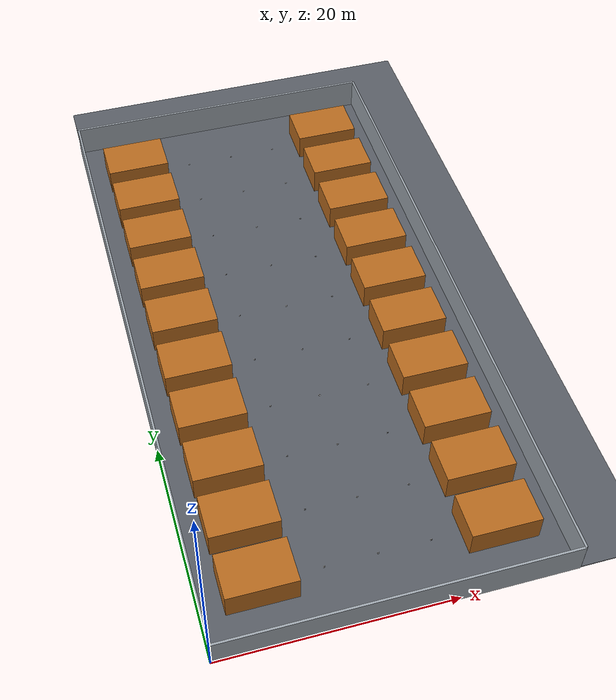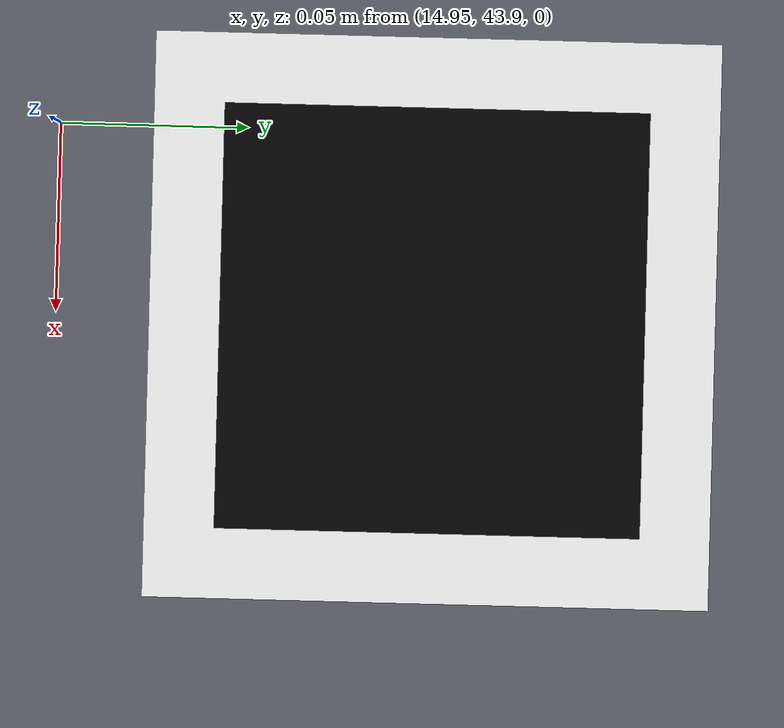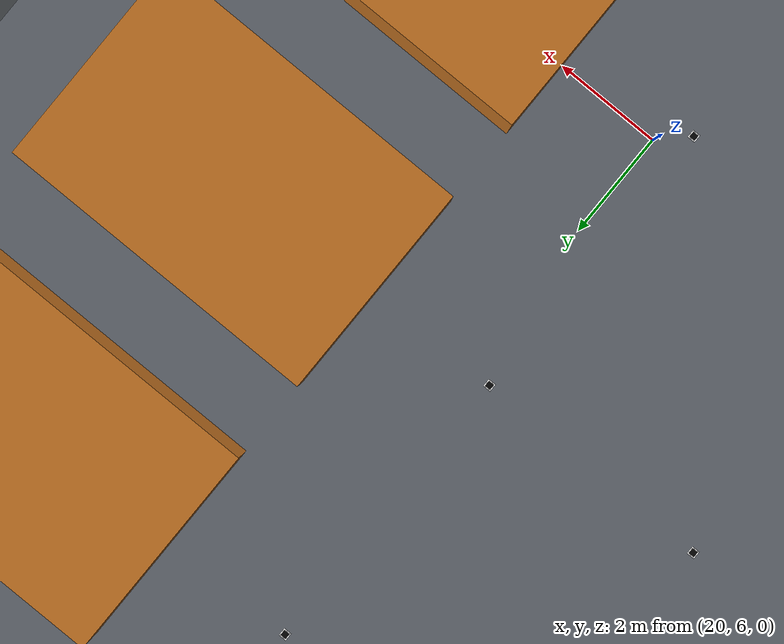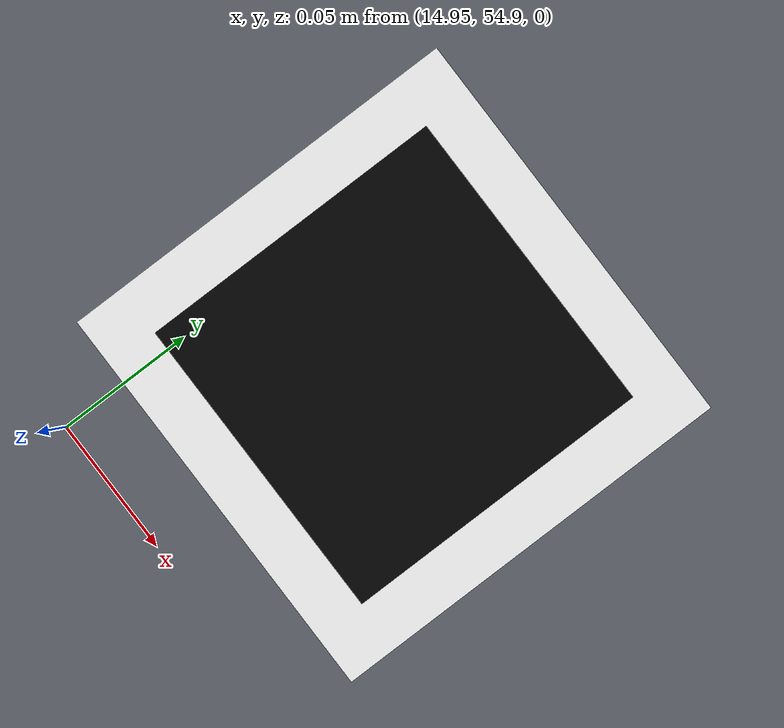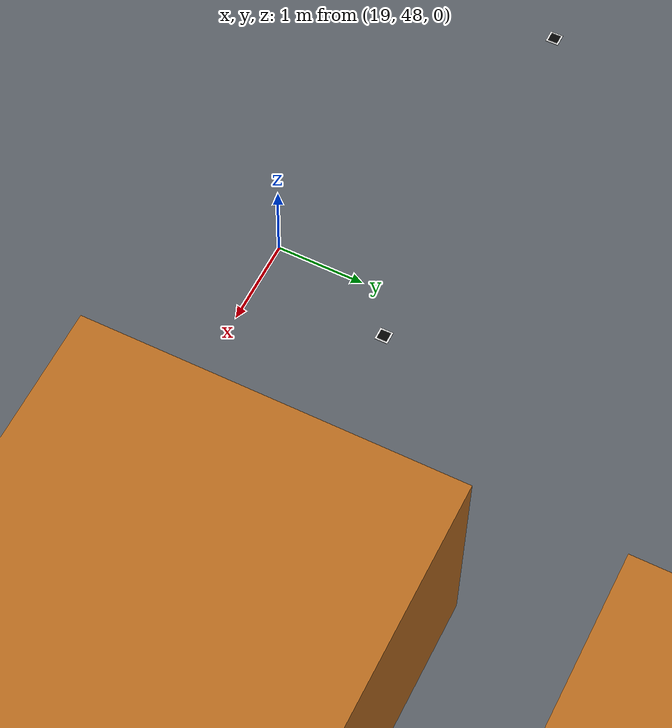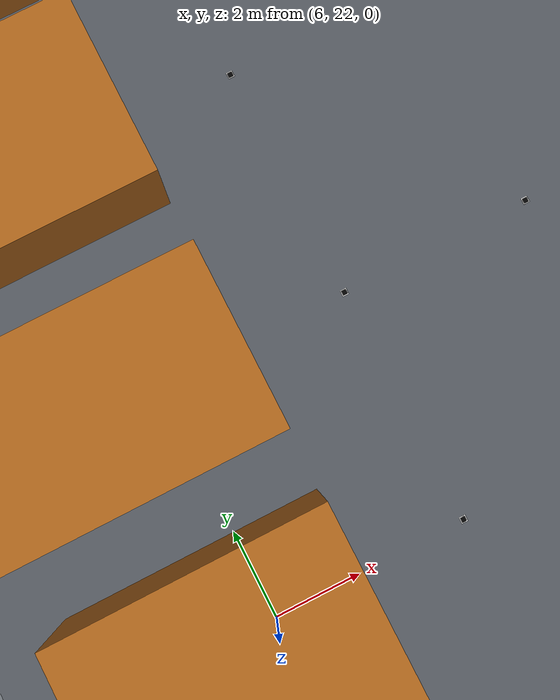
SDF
<?xml version="1.0"?>
<sdf version="1.6">
  <world name="warehouse_generated">
    <plugin name="gazebo_ros_state" filename="libgazebo_ros_state.so"/>
    <gravity>0 0 -9.81</gravity>
    <include><uri>model://sun</uri></include>
    <model name="floor_1">
      <static>true</static><pose>0 0 0 0 0 0</pose>
      <link name="link">
        <visual name="visual"><geometry><mesh><uri>file:///home/yahboom/swerve_bringup/generated/maps/WH-TEST-01/23/gazebo/models/floor_1/mesh.obj</uri><scale>1 1 1</scale></mesh></geometry><material><ambient>0.35 0.37 0.40 1</ambient><diffuse>0.35 0.37 0.40 1</diffuse></material></visual>
        <collision name="collision"><geometry><mesh><uri>file:///home/yahboom/swerve_bringup/generated/maps/WH-TEST-01/23/gazebo/models/floor_1/mesh.obj</uri><scale>1 1 1</scale></mesh></geometry></collision>
      </link>
    </model>
    <model name="floor_1_boundary_wall_0">
      <static>true</static>
      <pose>15 0 1.5 0 0 0</pose>
      <link name="link">
        <visual name="visual"><geometry><box><size>30 0.2 3</size></box></geometry><material><ambient>0.62 0.65 0.68 1</ambient><diffuse>0.62 0.65 0.68 1</diffuse></material></visual>
        <collision name="collision"><geometry><box><size>30 0.2 3</size></box></geometry></collision>
      </link>
    </model>
    <model name="floor_1_boundary_wall_1">
      <static>true</static>
      <pose>30 30 1.5 0 0 1.57079633</pose>
      <link name="link">
        <visual name="visual"><geometry><box><size>60 0.2 3</size></box></geometry><material><ambient>0.62 0.65 0.68 1</ambient><diffuse>0.62 0.65 0.68 1</diffuse></material></visual>
        <collision name="collision"><geometry><box><size>60 0.2 3</size></box></geometry></collision>
      </link>
    </model>
    <model name="floor_1_boundary_wall_2">
      <static>true</static>
      <pose>15 60 1.5 0 0 3.14159265</pose>
      <link name="link">
        <visual name="visual"><geometry><box><size>30 0.2 3</size></box></geometry><material><ambient>0.62 0.65 0.68 1</ambient><diffuse>0.62 0.65 0.68 1</diffuse></material></visual>
        <collision name="collision"><geometry><box><size>30 0.2 3</size></box></geometry></collision>
      </link>
    </model>
    <model name="floor_1_boundary_wall_3">
      <static>true</static>
      <pose>0 30 1.5 0 0 -1.57079633</pose>
      <link name="link">
        <visual name="visual"><geometry><box><size>60 0.2 3</size></box></geometry><material><ambient>0.62 0.65 0.68 1</ambient><diffuse>0.62 0.65 0.68 1</diffuse></material></visual>
        <collision name="collision"><geometry><box><size>60 0.2 3</size></box></geometry></collision>
      </link>
    </model>
    <model name="rack_SHELF-L01">
      <static>true</static>
      <pose>5 5.5 1.25 0 0 0</pose>
      <link name="link">
        <visual name="visual"><geometry><box><size>6 4 2.5</size></box></geometry><material><ambient>0.72 0.42 0.12 1</ambient><diffuse>0.72 0.42 0.12 1</diffuse></material></visual>
        <collision name="collision"><geometry><box><size>6 4 2.5</size></box></geometry></collision>
      </link>
    </model>
    <model name="rack_SHELF-R01">
      <static>true</static>
      <pose>25 5.5 1.25 0 0 0</pose>
      <link name="link">
        <visual name="visual"><geometry><box><size>6 4 2.5</size></box></geometry><material><ambient>0.72 0.42 0.12 1</ambient><diffuse>0.72 0.42 0.12 1</diffuse></material></visual>
        <collision name="collision"><geometry><box><size>6 4 2.5</size></box></geometry></collision>
      </link>
    </model>
    <model name="rack_SHELF-L02">
      <static>true</static>
      <pose>5 11 1.25 0 0 0</pose>
      <link name="link">
        <visual name="visual"><geometry><box><size>6 4 2.5</size></box></geometry><material><ambient>0.72 0.42 0.12 1</ambient><diffuse>0.72 0.42 0.12 1</diffuse></material></visual>
        <collision name="collision"><geometry><box><size>6 4 2.5</size></box></geometry></collision>
      </link>
    </model>
    <model name="rack_SHELF-R02">
      <static>true</static>
      <pose>25 11 1.25 0 0 0</pose>
      <link name="link">
        <visual name="visual"><geometry><box><size>6 4 2.5</size></box></geometry><material><ambient>0.72 0.42 0.12 1</ambient><diffuse>0.72 0.42 0.12 1</diffuse></material></visual>
        <collision name="collision"><geometry><box><size>6 4 2.5</size></box></geometry></collision>
      </link>
    </model>
    <model name="rack_SHELF-L03">
      <static>true</static>
      <pose>5 16.5 1.25 0 0 0</pose>
      <link name="link">
        <visual name="visual"><geometry><box><size>6 4 2.5</size></box></geometry><material><ambient>0.72 0.42 0.12 1</ambient><diffuse>0.72 0.42 0.12 1</diffuse></material></visual>
        <collision name="collision"><geometry><box><size>6 4 2.5</size></box></geometry></collision>
      </link>
    </model>
    <model name="rack_SHELF-R03">
      <static>true</static>
      <pose>25 16.5 1.25 0 0 0</pose>
      <link name="link">
        <visual name="visual"><geometry><box><size>6 4 2.5</size></box></geometry><material><ambient>0.72 0.42 0.12 1</ambient><diffuse>0.72 0.42 0.12 1</diffuse></material></visual>
        <collision name="collision"><geometry><box><size>6 4 2.5</size></box></geometry></collision>
      </link>
    </model>
    <model name="rack_SHELF-L04">
      <static>true</static>
      <pose>5 22 1.25 0 0 0</pose>
      <link name="link">
        <visual name="visual"><geometry><box><size>6 4 2.5</size></box></geometry><material><ambient>0.72 0.42 0.12 1</ambient><diffuse>0.72 0.42 0.12 1</diffuse></material></visual>
        <collision name="collision"><geometry><box><size>6 4 2.5</size></box></geometry></collision>
      </link>
    </model>
    <model name="rack_SHELF-R04">
      <static>true</static>
      <pose>25 22 1.25 0 0 0</pose>
      <link name="link">
        <visual name="visual"><geometry><box><size>6 4 2.5</size></box></geometry><material><ambient>0.72 0.42 0.12 1</ambient><diffuse>0.72 0.42 0.12 1</diffuse></material></visual>
        <collision name="collision"><geometry><box><size>6 4 2.5</size></box></geometry></collision>
      </link>
    </model>
    <model name="rack_SHELF-L05">
      <static>true</static>
      <pose>5 27.5 1.25 0 0 0</pose>
      <link name="link">
        <visual name="visual"><geometry><box><size>6 4 2.5</size></box></geometry><material><ambient>0.72 0.42 0.12 1</ambient><diffuse>0.72 0.42 0.12 1</diffuse></material></visual>
        <collision name="collision"><geometry><box><size>6 4 2.5</size></box></geometry></collision>
      </link>
    </model>
    <model name="rack_SHELF-R05">
      <static>true</static>
      <pose>25 27.5 1.25 0 0 0</pose>
      <link name="link">
        <visual name="visual"><geometry><box><size>6 4 2.5</size></box></geometry><material><ambient>0.72 0.42 0.12 1</ambient><diffuse>0.72 0.42 0.12 1</diffuse></material></visual>
        <collision name="collision"><geometry><box><size>6 4 2.5</size></box></geometry></collision>
      </link>
    </model>
    <model name="rack_SHELF-L06">
      <static>true</static>
      <pose>5 33 1.25 0 0 0</pose>
      <link name="link">
        <visual name="visual"><geometry><box><size>6 4 2.5</size></box></geometry><material><ambient>0.72 0.42 0.12 1</ambient><diffuse>0.72 0.42 0.12 1</diffuse></material></visual>
        <collision name="collision"><geometry><box><size>6 4 2.5</size></box></geometry></collision>
      </link>
    </model>
    <model name="rack_SHELF-R06">
      <static>true</static>
      <pose>25 33 1.25 0 0 0</pose>
      <link name="link">
        <visual name="visual"><geometry><box><size>6 4 2.5</size></box></geometry><material><ambient>0.72 0.42 0.12 1</ambient><diffuse>0.72 0.42 0.12 1</diffuse></material></visual>
        <collision name="collision"><geometry><box><size>6 4 2.5</size></box></geometry></collision>
      </link>
    </model>
    <model name="rack_SHELF-L07">
      <static>true</static>
      <pose>5 38.5 1.25 0 0 0</pose>
      <link name="link">
        <visual name="visual"><geometry><box><size>6 4 2.5</size></box></geometry><material><ambient>0.72 0.42 0.12 1</ambient><diffuse>0.72 0.42 0.12 1</diffuse></material></visual>
        <collision name="collision"><geometry><box><size>6 4 2.5</size></box></geometry></collision>
      </link>
    </model>
    <model name="rack_SHELF-R07">
      <static>true</static>
      <pose>25 38.5 1.25 0 0 0</pose>
      <link name="link">
        <visual name="visual"><geometry><box><size>6 4 2.5</size></box></geometry><material><ambient>0.72 0.42 0.12 1</ambient><diffuse>0.72 0.42 0.12 1</diffuse></material></visual>
        <collision name="collision"><geometry><box><size>6 4 2.5</size></box></geometry></collision>
      </link>
    </model>
    <model name="rack_SHELF-L08">
      <static>true</static>
      <pose>5 44 1.25 0 0 0</pose>
      <link name="link">
        <visual name="visual"><geometry><box><size>6 4 2.5</size></box></geometry><material><ambient>0.72 0.42 0.12 1</ambient><diffuse>0.72 0.42 0.12 1</diffuse></material></visual>
        <collision name="collision"><geometry><box><size>6 4 2.5</size></box></geometry></collision>
      </link>
    </model>
    <model name="rack_SHELF-R08">
      <static>true</static>
      <pose>25 44 1.25 0 0 0</pose>
      <link name="link">
        <visual name="visual"><geometry><box><size>6 4 2.5</size></box></geometry><material><ambient>0.72 0.42 0.12 1</ambient><diffuse>0.72 0.42 0.12 1</diffuse></material></visual>
        <collision name="collision"><geometry><box><size>6 4 2.5</size></box></geometry></collision>
      </link>
    </model>
    <model name="rack_SHELF-L09">
      <static>true</static>
      <pose>5 49.5 1.25 0 0 0</pose>
      <link name="link">
        <visual name="visual"><geometry><box><size>6 4 2.5</size></box></geometry><material><ambient>0.72 0.42 0.12 1</ambient><diffuse>0.72 0.42 0.12 1</diffuse></material></visual>
        <collision name="collision"><geometry><box><size>6 4 2.5</size></box></geometry></collision>
      </link>
    </model>
    <model name="rack_SHELF-R09">
      <static>true</static>
      <pose>25 49.5 1.25 0 0 0</pose>
      <link name="link">
        <visual name="visual"><geometry><box><size>6 4 2.5</size></box></geometry><material><ambient>0.72 0.42 0.12 1</ambient><diffuse>0.72 0.42 0.12 1</diffuse></material></visual>
        <collision name="collision"><geometry><box><size>6 4 2.5</size></box></geometry></collision>
      </link>
    </model>
    <model name="rack_SHELF-L10">
      <static>true</static>
      <pose>5 55 1.25 0 0 0</pose>
      <link name="link">
        <visual name="visual"><geometry><box><size>6 4 2.5</size></box></geometry><material><ambient>0.72 0.42 0.12 1</ambient><diffuse>0.72 0.42 0.12 1</diffuse></material></visual>
        <collision name="collision"><geometry><box><size>6 4 2.5</size></box></geometry></collision>
      </link>
    </model>
    <model name="rack_SHELF-R10">
      <static>true</static>
      <pose>25 55 1.25 0 0 0</pose>
      <link name="link">
        <visual name="visual"><geometry><box><size>6 4 2.5</size></box></geometry><material><ambient>0.72 0.42 0.12 1</ambient><diffuse>0.72 0.42 0.12 1</diffuse></material></visual>
        <collision name="collision"><geometry><box><size>6 4 2.5</size></box></geometry></collision>
      </link>
    </model>
    <model name="nav_tag_1101">
      <static>true</static><pose>10.5 5.5 0 0 0 -1.57079633</pose>
      <link name="link">
        <visual name="substrate"><pose>0 0 0.003 0 0 0</pose><geometry><box><size>0.15 0.15 0.006</size></box></geometry><material><ambient>0.95 0.95 0.95 1</ambient><diffuse>0.95 0.95 0.95 1</diffuse></material></visual>
        <visual name="id_marker"><pose>0 0 0.007 0 0 0</pose><geometry><box><size>0.1125 0.1125 0.004</size></box></geometry><material><ambient>0.01 0.01 0.01 1</ambient><diffuse>0.01 0.01 0.01 1</diffuse></material></visual>
      </link>
    </model>
    <model name="nav_tag_1201">
      <static>true</static><pose>15 5.5 0 0 0 1.57079633</pose>
      <link name="link">
        <visual name="substrate"><pose>0 0 0.003 0 0 0</pose><geometry><box><size>0.15 0.15 0.006</size></box></geometry><material><ambient>0.95 0.95 0.95 1</ambient><diffuse>0.95 0.95 0.95 1</diffuse></material></visual>
        <visual name="id_marker"><pose>0 0 0.007 0 0 0</pose><geometry><box><size>0.1125 0.1125 0.004</size></box></geometry><material><ambient>0.01 0.01 0.01 1</ambient><diffuse>0.01 0.01 0.01 1</diffuse></material></visual>
      </link>
    </model>
    <model name="nav_tag_1301">
      <static>true</static><pose>19.5 5.5 0 0 0 -1.57079633</pose>
      <link name="link">
        <visual name="substrate"><pose>0 0 0.003 0 0 0</pose><geometry><box><size>0.15 0.15 0.006</size></box></geometry><material><ambient>0.95 0.95 0.95 1</ambient><diffuse>0.95 0.95 0.95 1</diffuse></material></visual>
        <visual name="id_marker"><pose>0 0 0.007 0 0 0</pose><geometry><box><size>0.1125 0.1125 0.004</size></box></geometry><material><ambient>0.01 0.01 0.01 1</ambient><diffuse>0.01 0.01 0.01 1</diffuse></material></visual>
      </link>
    </model>
    <model name="nav_tag_1102">
      <static>true</static><pose>10.5 11 0 0 0 -1.57079633</pose>
      <link name="link">
        <visual name="substrate"><pose>0 0 0.003 0 0 0</pose><geometry><box><size>0.15 0.15 0.006</size></box></geometry><material><ambient>0.95 0.95 0.95 1</ambient><diffuse>0.95 0.95 0.95 1</diffuse></material></visual>
        <visual name="id_marker"><pose>0 0 0.007 0 0 0</pose><geometry><box><size>0.1125 0.1125 0.004</size></box></geometry><material><ambient>0.01 0.01 0.01 1</ambient><diffuse>0.01 0.01 0.01 1</diffuse></material></visual>
      </link>
    </model>
    <model name="nav_tag_1202">
      <static>true</static><pose>15 11 0 0 0 1.57079633</pose>
      <link name="link">
        <visual name="substrate"><pose>0 0 0.003 0 0 0</pose><geometry><box><size>0.15 0.15 0.006</size></box></geometry><material><ambient>0.95 0.95 0.95 1</ambient><diffuse>0.95 0.95 0.95 1</diffuse></material></visual>
        <visual name="id_marker"><pose>0 0 0.007 0 0 0</pose><geometry><box><size>0.1125 0.1125 0.004</size></box></geometry><material><ambient>0.01 0.01 0.01 1</ambient><diffuse>0.01 0.01 0.01 1</diffuse></material></visual>
      </link>
    </model>
    <model name="nav_tag_1302">
      <static>true</static><pose>19.5 11 0 0 0 -1.57079633</pose>
      <link name="link">
        <visual name="substrate"><pose>0 0 0.003 0 0 0</pose><geometry><box><size>0.15 0.15 0.006</size></box></geometry><material><ambient>0.95 0.95 0.95 1</ambient><diffuse>0.95 0.95 0.95 1</diffuse></material></visual>
        <visual name="id_marker"><pose>0 0 0.007 0 0 0</pose><geometry><box><size>0.1125 0.1125 0.004</size></box></geometry><material><ambient>0.01 0.01 0.01 1</ambient><diffuse>0.01 0.01 0.01 1</diffuse></material></visual>
      </link>
    </model>
    <model name="nav_tag_1103">
      <static>true</static><pose>10.5 16.5 0 0 0 -1.57079633</pose>
      <link name="link">
        <visual name="substrate"><pose>0 0 0.003 0 0 0</pose><geometry><box><size>0.15 0.15 0.006</size></box></geometry><material><ambient>0.95 0.95 0.95 1</ambient><diffuse>0.95 0.95 0.95 1</diffuse></material></visual>
        <visual name="id_marker"><pose>0 0 0.007 0 0 0</pose><geometry><box><size>0.1125 0.1125 0.004</size></box></geometry><material><ambient>0.01 0.01 0.01 1</ambient><diffuse>0.01 0.01 0.01 1</diffuse></material></visual>
      </link>
    </model>
    <model name="nav_tag_1203">
      <static>true</static><pose>15 16.5 0 0 0 1.57079633</pose>
      <link name="link">
        <visual name="substrate"><pose>0 0 0.003 0 0 0</pose><geometry><box><size>0.15 0.15 0.006</size></box></geometry><material><ambient>0.95 0.95 0.95 1</ambient><diffuse>0.95 0.95 0.95 1</diffuse></material></visual>
        <visual name="id_marker"><pose>0 0 0.007 0 0 0</pose><geometry><box><size>0.1125 0.1125 0.004</size></box></geometry><material><ambient>0.01 0.01 0.01 1</ambient><diffuse>0.01 0.01 0.01 1</diffuse></material></visual>
      </link>
    </model>
    <model name="nav_tag_1303">
      <static>true</static><pose>19.5 16.5 0 0 0 -1.57079633</pose>
      <link name="link">
        <visual name="substrate"><pose>0 0 0.003 0 0 0</pose><geometry><box><size>0.15 0.15 0.006</size></box></geometry><material><ambient>0.95 0.95 0.95 1</ambient><diffuse>0.95 0.95 0.95 1</diffuse></material></visual>
        <visual name="id_marker"><pose>0 0 0.007 0 0 0</pose><geometry><box><size>0.1125 0.1125 0.004</size></box></geometry><material><ambient>0.01 0.01 0.01 1</ambient><diffuse>0.01 0.01 0.01 1</diffuse></material></visual>
      </link>
    </model>
    <model name="nav_tag_1104">
      <static>true</static><pose>10.5 22 0 0 0 -1.57079633</pose>
      <link name="link">
        <visual name="substrate"><pose>0 0 0.003 0 0 0</pose><geometry><box><size>0.15 0.15 0.006</size></box></geometry><material><ambient>0.95 0.95 0.95 1</ambient><diffuse>0.95 0.95 0.95 1</diffuse></material></visual>
        <visual name="id_marker"><pose>0 0 0.007 0 0 0</pose><geometry><box><size>0.1125 0.1125 0.004</size></box></geometry><material><ambient>0.01 0.01 0.01 1</ambient><diffuse>0.01 0.01 0.01 1</diffuse></material></visual>
      </link>
    </model>
    <model name="nav_tag_1204">
      <static>true</static><pose>15 22 0 0 0 1.57079633</pose>
      <link name="link">
        <visual name="substrate"><pose>0 0 0.003 0 0 0</pose><geometry><box><size>0.15 0.15 0.006</size></box></geometry><material><ambient>0.95 0.95 0.95 1</ambient><diffuse>0.95 0.95 0.95 1</diffuse></material></visual>
        <visual name="id_marker"><pose>0 0 0.007 0 0 0</pose><geometry><box><size>0.1125 0.1125 0.004</size></box></geometry><material><ambient>0.01 0.01 0.01 1</ambient><diffuse>0.01 0.01 0.01 1</diffuse></material></visual>
      </link>
    </model>
    <model name="nav_tag_1304">
      <static>true</static><pose>19.5 22 0 0 0 -1.57079633</pose>
      <link name="link">
        <visual name="substrate"><pose>0 0 0.003 0 0 0</pose><geometry><box><size>0.15 0.15 0.006</size></box></geometry><material><ambient>0.95 0.95 0.95 1</ambient><diffuse>0.95 0.95 0.95 1</diffuse></material></visual>
        <visual name="id_marker"><pose>0 0 0.007 0 0 0</pose><geometry><box><size>0.1125 0.1125 0.004</size></box></geometry><material><ambient>0.01 0.01 0.01 1</ambient><diffuse>0.01 0.01 0.01 1</diffuse></material></visual>
      </link>
    </model>
    <model name="nav_tag_1105">
      <static>true</static><pose>10.5 27.5 0 0 0 -1.57079633</pose>
      <link name="link">
        <visual name="substrate"><pose>0 0 0.003 0 0 0</pose><geometry><box><size>0.15 0.15 0.006</size></box></geometry><material><ambient>0.95 0.95 0.95 1</ambient><diffuse>0.95 0.95 0.95 1</diffuse></material></visual>
        <visual name="id_marker"><pose>0 0 0.007 0 0 0</pose><geometry><box><size>0.1125 0.1125 0.004</size></box></geometry><material><ambient>0.01 0.01 0.01 1</ambient><diffuse>0.01 0.01 0.01 1</diffuse></material></visual>
      </link>
    </model>
    <model name="nav_tag_1205">
      <static>true</static><pose>15 27.5 0 0 0 1.57079633</pose>
      <link name="link">
        <visual name="substrate"><pose>0 0 0.003 0 0 0</pose><geometry><box><size>0.15 0.15 0.006</size></box></geometry><material><ambient>0.95 0.95 0.95 1</ambient><diffuse>0.95 0.95 0.95 1</diffuse></material></visual>
        <visual name="id_marker"><pose>0 0 0.007 0 0 0</pose><geometry><box><size>0.1125 0.1125 0.004</size></box></geometry><material><ambient>0.01 0.01 0.01 1</ambient><diffuse>0.01 0.01 0.01 1</diffuse></material></visual>
      </link>
    </model>
    <model name="nav_tag_1305">
      <static>true</static><pose>19.5 27.5 0 0 0 -1.57079633</pose>
      <link name="link">
        <visual name="substrate"><pose>0 0 0.003 0 0 0</pose><geometry><box><size>0.15 0.15 0.006</size></box></geometry><material><ambient>0.95 0.95 0.95 1</ambient><diffuse>0.95 0.95 0.95 1</diffuse></material></visual>
        <visual name="id_marker"><pose>0 0 0.007 0 0 0</pose><geometry><box><size>0.1125 0.1125 0.004</size></box></geometry><material><ambient>0.01 0.01 0.01 1</ambient><diffuse>0.01 0.01 0.01 1</diffuse></material></visual>
      </link>
    </model>
    <model name="nav_tag_1106">
      <static>true</static><pose>10.5 33 0 0 0 -1.57079633</pose>
      <link name="link">
        <visual name="substrate"><pose>0 0 0.003 0 0 0</pose><geometry><box><size>0.15 0.15 0.006</size></box></geometry><material><ambient>0.95 0.95 0.95 1</ambient><diffuse>0.95 0.95 0.95 1</diffuse></material></visual>
        <visual name="id_marker"><pose>0 0 0.007 0 0 0</pose><geometry><box><size>0.1125 0.1125 0.004</size></box></geometry><material><ambient>0.01 0.01 0.01 1</ambient><diffuse>0.01 0.01 0.01 1</diffuse></material></visual>
      </link>
    </model>
    <model name="nav_tag_1206">
      <static>true</static><pose>15 33 0 0 0 1.57079633</pose>
      <link name="link">
        <visual name="substrate"><pose>0 0 0.003 0 0 0</pose><geometry><box><size>0.15 0.15 0.006</size></box></geometry><material><ambient>0.95 0.95 0.95 1</ambient><diffuse>0.95 0.95 0.95 1</diffuse></material></visual>
        <visual name="id_marker"><pose>0 0 0.007 0 0 0</pose><geometry><box><size>0.1125 0.1125 0.004</size></box></geometry><material><ambient>0.01 0.01 0.01 1</ambient><diffuse>0.01 0.01 0.01 1</diffuse></material></visual>
      </link>
    </model>
    <model name="nav_tag_1306">
      <static>true</static><pose>19.5 33 0 0 0 -1.57079633</pose>
      <link name="link">
        <visual name="substrate"><pose>0 0 0.003 0 0 0</pose><geometry><box><size>0.15 0.15 0.006</size></box></geometry><material><ambient>0.95 0.95 0.95 1</ambient><diffuse>0.95 0.95 0.95 1</diffuse></material></visual>
        <visual name="id_marker"><pose>0 0 0.007 0 0 0</pose><geometry><box><size>0.1125 0.1125 0.004</size></box></geometry><material><ambient>0.01 0.01 0.01 1</ambient><diffuse>0.01 0.01 0.01 1</diffuse></material></visual>
      </link>
    </model>
    <model name="nav_tag_1107">
      <static>true</static><pose>10.5 38.5 0 0 0 -1.57079633</pose>
      <link name="link">
        <visual name="substrate"><pose>0 0 0.003 0 0 0</pose><geometry><box><size>0.15 0.15 0.006</size></box></geometry><material><ambient>0.95 0.95 0.95 1</ambient><diffuse>0.95 0.95 0.95 1</diffuse></material></visual>
        <visual name="id_marker"><pose>0 0 0.007 0 0 0</pose><geometry><box><size>0.1125 0.1125 0.004</size></box></geometry><material><ambient>0.01 0.01 0.01 1</ambient><diffuse>0.01 0.01 0.01 1</diffuse></material></visual>
      </link>
    </model>
    <model name="nav_tag_1207">
      <static>true</static><pose>15 38.5 0 0 0 1.57079633</pose>
      <link name="link">
        <visual name="substrate"><pose>0 0 0.003 0 0 0</pose><geometry><box><size>0.15 0.15 0.006</size></box></geometry><material><ambient>0.95 0.95 0.95 1</ambient><diffuse>0.95 0.95 0.95 1</diffuse></material></visual>
        <visual name="id_marker"><pose>0 0 0.007 0 0 0</pose><geometry><box><size>0.1125 0.1125 0.004</size></box></geometry><material><ambient>0.01 0.01 0.01 1</ambient><diffuse>0.01 0.01 0.01 1</diffuse></material></visual>
      </link>
    </model>
    <model name="nav_tag_1307">
      <static>true</static><pose>19.5 38.5 0 0 0 -1.57079633</pose>
      <link name="link">
        <visual name="substrate"><pose>0 0 0.003 0 0 0</pose><geometry><box><size>0.15 0.15 0.006</size></box></geometry><material><ambient>0.95 0.95 0.95 1</ambient><diffuse>0.95 0.95 0.95 1</diffuse></material></visual>
        <visual name="id_marker"><pose>0 0 0.007 0 0 0</pose><geometry><box><size>0.1125 0.1125 0.004</size></box></geometry><material><ambient>0.01 0.01 0.01 1</ambient><diffuse>0.01 0.01 0.01 1</diffuse></material></visual>
      </link>
    </model>
    <model name="nav_tag_1108">
      <static>true</static><pose>10.5 44 0 0 0 -1.57079633</pose>
      <link name="link">
        <visual name="substrate"><pose>0 0 0.003 0 0 0</pose><geometry><box><size>0.15 0.15 0.006</size></box></geometry><material><ambient>0.95 0.95 0.95 1</ambient><diffuse>0.95 0.95 0.95 1</diffuse></material></visual>
        <visual name="id_marker"><pose>0 0 0.007 0 0 0</pose><geometry><box><size>0.1125 0.1125 0.004</size></box></geometry><material><ambient>0.01 0.01 0.01 1</ambient><diffuse>0.01 0.01 0.01 1</diffuse></material></visual>
      </link>
    </model>
    <model name="nav_tag_1208">
      <static>true</static><pose>15 44 0 0 0 1.57079633</pose>
      <link name="link">
        <visual name="substrate"><pose>0 0 0.003 0 0 0</pose><geometry><box><size>0.15 0.15 0.006</size></box></geometry><material><ambient>0.95 0.95 0.95 1</ambient><diffuse>0.95 0.95 0.95 1</diffuse></material></visual>
        <visual name="id_marker"><pose>0 0 0.007 0 0 0</pose><geometry><box><size>0.1125 0.1125 0.004</size></box></geometry><material><ambient>0.01 0.01 0.01 1</ambient><diffuse>0.01 0.01 0.01 1</diffuse></material></visual>
      </link>
    </model>
    <model name="nav_tag_1308">
      <static>true</static><pose>19.5 44 0 0 0 -1.57079633</pose>
      <link name="link">
        <visual name="substrate"><pose>0 0 0.003 0 0 0</pose><geometry><box><size>0.15 0.15 0.006</size></box></geometry><material><ambient>0.95 0.95 0.95 1</ambient><diffuse>0.95 0.95 0.95 1</diffuse></material></visual>
        <visual name="id_marker"><pose>0 0 0.007 0 0 0</pose><geometry><box><size>0.1125 0.1125 0.004</size></box></geometry><material><ambient>0.01 0.01 0.01 1</ambient><diffuse>0.01 0.01 0.01 1</diffuse></material></visual>
      </link>
    </model>
    <model name="nav_tag_1109">
      <static>true</static><pose>10.5 49.5 0 0 0 -1.57079633</pose>
      <link name="link">
        <visual name="substrate"><pose>0 0 0.003 0 0 0</pose><geometry><box><size>0.15 0.15 0.006</size></box></geometry><material><ambient>0.95 0.95 0.95 1</ambient><diffuse>0.95 0.95 0.95 1</diffuse></material></visual>
        <visual name="id_marker"><pose>0 0 0.007 0 0 0</pose><geometry><box><size>0.1125 0.1125 0.004</size></box></geometry><material><ambient>0.01 0.01 0.01 1</ambient><diffuse>0.01 0.01 0.01 1</diffuse></material></visual>
      </link>
    </model>
    <model name="nav_tag_1209">
      <static>true</static><pose>15 49.5 0 0 0 1.57079633</pose>
      <link name="link">
        <visual name="substrate"><pose>0 0 0.003 0 0 0</pose><geometry><box><size>0.15 0.15 0.006</size></box></geometry><material><ambient>0.95 0.95 0.95 1</ambient><diffuse>0.95 0.95 0.95 1</diffuse></material></visual>
        <visual name="id_marker"><pose>0 0 0.007 0 0 0</pose><geometry><box><size>0.1125 0.1125 0.004</size></box></geometry><material><ambient>0.01 0.01 0.01 1</ambient><diffuse>0.01 0.01 0.01 1</diffuse></material></visual>
      </link>
    </model>
    <model name="nav_tag_1309">
      <static>true</static><pose>19.5 49.5 0 0 0 -1.57079633</pose>
      <link name="link">
        <visual name="substrate"><pose>0 0 0.003 0 0 0</pose><geometry><box><size>0.15 0.15 0.006</size></box></geometry><material><ambient>0.95 0.95 0.95 1</ambient><diffuse>0.95 0.95 0.95 1</diffuse></material></visual>
        <visual name="id_marker"><pose>0 0 0.007 0 0 0</pose><geometry><box><size>0.1125 0.1125 0.004</size></box></geometry><material><ambient>0.01 0.01 0.01 1</ambient><diffuse>0.01 0.01 0.01 1</diffuse></material></visual>
      </link>
    </model>
    <model name="nav_tag_1110">
      <static>true</static><pose>10.5 55 0 0 0 -1.57079633</pose>
      <link name="link">
        <visual name="substrate"><pose>0 0 0.003 0 0 0</pose><geometry><box><size>0.15 0.15 0.006</size></box></geometry><material><ambient>0.95 0.95 0.95 1</ambient><diffuse>0.95 0.95 0.95 1</diffuse></material></visual>
        <visual name="id_marker"><pose>0 0 0.007 0 0 0</pose><geometry><box><size>0.1125 0.1125 0.004</size></box></geometry><material><ambient>0.01 0.01 0.01 1</ambient><diffuse>0.01 0.01 0.01 1</diffuse></material></visual>
      </link>
    </model>
    <model name="nav_tag_1210">
      <static>true</static><pose>15 55 0 0 0 1.57079633</pose>
      <link name="link">
        <visual name="substrate"><pose>0 0 0.003 0 0 0</pose><geometry><box><size>0.15 0.15 0.006</size></box></geometry><material><ambient>0.95 0.95 0.95 1</ambient><diffuse>0.95 0.95 0.95 1</diffuse></material></visual>
        <visual name="id_marker"><pose>0 0 0.007 0 0 0</pose><geometry><box><size>0.1125 0.1125 0.004</size></box></geometry><material><ambient>0.01 0.01 0.01 1</ambient><diffuse>0.01 0.01 0.01 1</diffuse></material></visual>
      </link>
    </model>
    <model name="nav_tag_1310">
      <static>true</static><pose>19.5 55 0 0 0 -1.57079633</pose>
      <link name="link">
        <visual name="substrate"><pose>0 0 0.003 0 0 0</pose><geometry><box><size>0.15 0.15 0.006</size></box></geometry><material><ambient>0.95 0.95 0.95 1</ambient><diffuse>0.95 0.95 0.95 1</diffuse></material></visual>
        <visual name="id_marker"><pose>0 0 0.007 0 0 0</pose><geometry><box><size>0.1125 0.1125 0.004</size></box></geometry><material><ambient>0.01 0.01 0.01 1</ambient><diffuse>0.01 0.01 0.01 1</diffuse></material></visual>
      </link>
    </model>
  </world>
</sdf>
